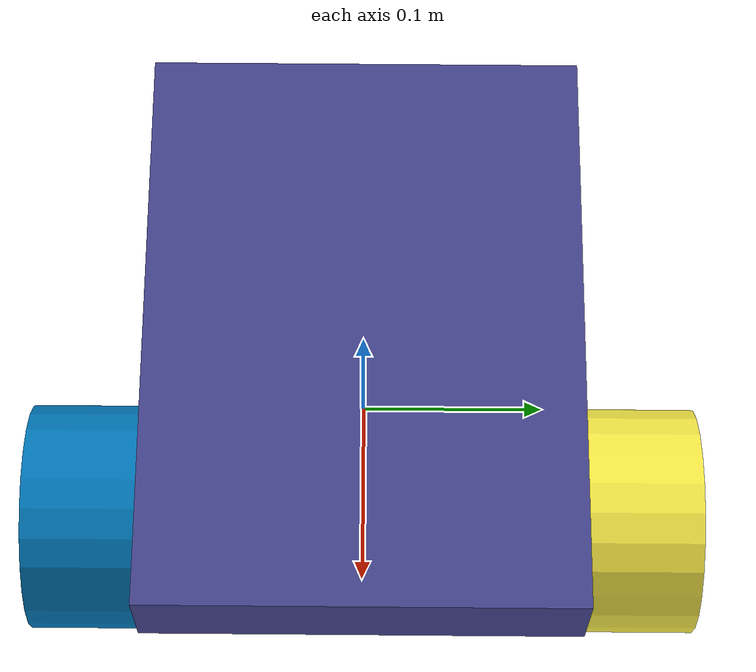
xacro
<?xml version="1.0"?>
<robot xmlns:xacro="http://ros.org/wiki/xacro" name="lysander">

  <xacro:arg name="robot_namespace" default="/" />

  <xacro:include filename="$(find miranda_description)/urdf/caster.urdf.xacro" />
  <xacro:include filename="$(find miranda_description)/urdf/wheel.urdf.xacro" />
  <!--xacro:include filename="$(find miranda_description)/urdf/lysander.gazebo" /-->

  <xacro:property name="M_PI" value="3.14159"/>
  <xacro:property name="wheel_vertical_offset" value="0.03282" />

  <xacro:property name="body_height" value="0.0508" />
  <xacro:property name="body_length" value="0.3048" />
  <xacro:property name="body_width" value="0.2286" />
  <xacro:property name="fwheel_offset" value="-0.13" />
  <xacro:property name="wheel_forward_of_center_distance" value=".0762" />
  <xacro:property name="motor_height" value="0.0254" />
  <xacro:property name="lidar_height" value="0.015" />
  <xacro:property name="lidar_length" value="0.045" />
  <xacro:property name="lidar_width" value="0.015" />
  <xacro:property name="wheel_radius" value="0.06" />
  <xacro:property name="wheel_spacer" value="0.00254" />
  <xacro:property name="wheel_width" value="0.060" />
  <xacro:property name="body_center_height" value="${wheel_radius+(motor_height/2)+(body_height/2)}" />

  <xacro:property name="lidar_x_offset" value="${(body_length/2)-(lidar_width/2)}" />
  <xacro:property name="lidar_z_offset" value="${body_center_height+(body_height/2)+(lidar_height/2)+.00508}" />

  <material name="base">
    <color rgba="0.25 0.25 0.53 1" />>
  </material>

  <material name="wheel">
    <color rgba="0.6 0.5 0.5 1" />
  </material>

  <gazebo>
    <plugin name="gazebo_ros_control" filename="libgazebo_ros_control.so">
      <robotNamespace>$(arg robot_namespace)</robotNamespace>
    </plugin>
  </gazebo>

  <!-- Parts -->
  <link name="base_link">
    <collision>
      <geometry>
        <box size="${body_length} ${body_width} 0.0508"/>
      </geometry>
      <origin rpy="0 0 0" xyz="0 0 ${body_center_height}"/>
    </collision>
    <visual>
      <geometry>
        <box size="${body_length} ${body_width} 0.0508"/>
      </geometry>
      <material name="base" />
      <origin rpy="0 0 0" xyz="0 0 ${body_center_height}"/>
    </visual>
    <inertial>
        <origin xyz="0 0 0" rpy="0 0 0" />
        <mass value="1" />
        <inertia
          ixx="1.0" ixy="0.0" ixz="0.0"
          iyy="1.0" iyz="0.0"
          izz="1.0" />
    </inertial>
  </link>

  <!-- Base footprint is on the ground under the robot -->
  <link name="base_footprint"/>

  <joint name="base_footprint_joint" type="fixed">
    <origin xyz="0 0 ${wheel_vertical_offset - wheel_radius}" rpy="0 0 0" />
    <parent link="base_link" />
    <child link="base_footprint" />
  </joint>

  <!-- Interial link stores the robot's inertial information -->
  <link name="inertial_link">
    <inertial>
      <mass value="46.034" />
      <origin xyz="-0.00065 -0.085 0.062" />
      <inertia ixx="0.6022" ixy="-0.02364" ixz="-0.1197" iyy="1.7386" iyz="-0.001544" izz="2.0296" />
    </inertial>
  </link>

  <joint name="inertial_joint" type="fixed">
    <origin xyz="0 0 0" rpy="0 0 0" />
    <parent link="base_link" />
    <child link="inertial_link" />
  </joint>

  <xacro:wheel wheel_prefix="front_left">
    <origin xyz="${wheel_forward_of_center_distance} ${(body_width/2)+wheel_spacer+(wheel_width/2)} ${wheel_vertical_offset}" rpy="0 0 0" />
  </xacro:wheel>
  <xacro:wheel wheel_prefix="front_right">
    <origin xyz="${wheel_forward_of_center_distance} -${(body_width/2)+wheel_spacer+(wheel_width/2)} ${wheel_vertical_offset}" rpy="0 0 0" />
  </xacro:wheel>
  <xacro:caster wheel_prefix="caster">
    <origin xyz="${fwheel_offset} 0 ${wheel_vertical_offset}" rpy="0 0 0" />
  </xacro:caster>

</robot>

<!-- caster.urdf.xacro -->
<robot xmlns:xacro="http://www.ros.org/wiki/xacro" name="caster">

	<xacro:macro name="caster" params="wheel_prefix *joint_pose">
		<link name="${wheel_prefix}_wheel_link">
			<inertial>
				<mass value="2.637" />
				<origin rpy="0 0 0" xyz="0 0 0" />
				<inertia  ixx="0.02467" ixy="0" ixz="0" iyy="0.04411" iyz="0" izz="0.02467" />
			</inertial>
			<visual>
				<origin xyz="0 0 0" rpy="1.5708 0 0" />
				<geometry>
			        <cylinder length="${wheel_width}" radius="${wheel_radius}" />
				</geometry>
		        <material name="wheel" />
			</visual>
			<collision>
				<origin xyz="0 0 0" rpy="1.5708 0 0" />
				<geometry>
			        <cylinder length="${wheel_width}" radius="${wheel_radius}" />
				</geometry>
			</collision>
		</link>

		<gazebo reference="${wheel_prefix}_wheel_link">
			<kp value="10000000.0" />
			<kd value="1.0" />
			<fdir1 value="1 0 0"/>
		</gazebo>

		<joint name="${wheel_prefix}_wheel" type="continuous">
			<parent link="base_link"/>
			<child link="${wheel_prefix}_wheel_link"/>
			<xacro:insert_block name="joint_pose"/>
			<axis xyz="0 1 0" rpy="0 0 0" />
		</joint>
	</xacro:macro>
</robot>

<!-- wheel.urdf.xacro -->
<robot xmlns:xacro="http://www.ros.org/wiki/xacro" name="wheel">

	<xacro:macro name="wheel" params="wheel_prefix *joint_pose">
		<link name="${wheel_prefix}_wheel_link">
			<inertial>
				<mass value="2.637" />
				<origin xyz="0 0 0" />
				<inertia  ixx="0.02467" ixy="0" ixz="0" iyy="0.04411" iyz="0" izz="0.02467" />
			</inertial>
			<visual>
				<!--origin xyz="0 0 0" rpy="0 0 0" /-->
				<origin xyz="0 0 0" rpy="${M_PI/2} 0 0" />
				<geometry>
			        <cylinder length="${wheel_width}" radius="${wheel_radius}" />
					<!--mesh filename="package://husky_description/meshes/wheel.dae" /-->
				</geometry>
			</visual>
			<collision>
				<origin xyz="0 0 0" rpy="${M_PI/2} 0 0" />
				<geometry>
			        <cylinder length="${wheel_width}" radius="${wheel_radius}" />
					<!--cylinder length="${wheel_length}" radius="${wheel_radius}" /-->
				</geometry>
			</collision>
		</link>

		<gazebo reference="${wheel_prefix}_wheel_link">
			<mu1 value="1.0"/>
			<mu2 value="1.0"/>
			<kp value="10000000.0" />
			<kd value="1.0" />
			<fdir1 value="1 0 0"/>
		</gazebo>

		<joint name="${wheel_prefix}_wheel" type="continuous">
			<parent link="base_link"/>
			<child link="${wheel_prefix}_wheel_link"/>
			<xacro:insert_block name="joint_pose"/>
			<axis xyz="0 1 0" rpy="0 0 0" />
		</joint>

		<transmission name="${wheel_prefix}_wheel_trans" type="SimpleTransmission">
			<type>transmission_interface/SimpleTransmission</type>
			<actuator name="${wheel_prefix}_wheel_motor">
				<mechanicalReduction>1</mechanicalReduction>
			</actuator>
			<joint name="${wheel_prefix}_wheel">
				<hardwareInterface>hardware_interface/VelocityJointInterface</hardwareInterface>
			</joint>
		</transmission>

	</xacro:macro>

</robot>
